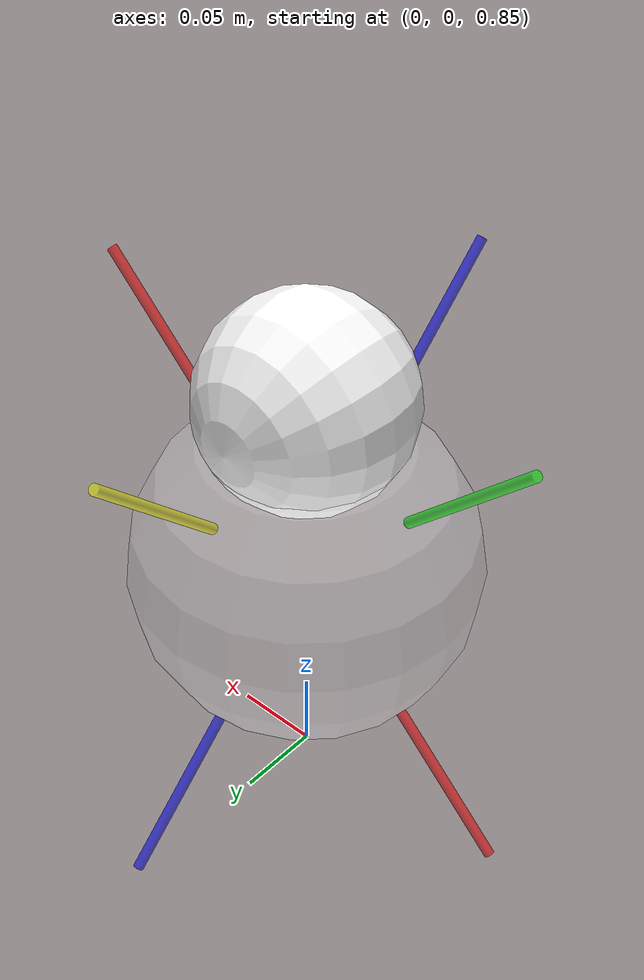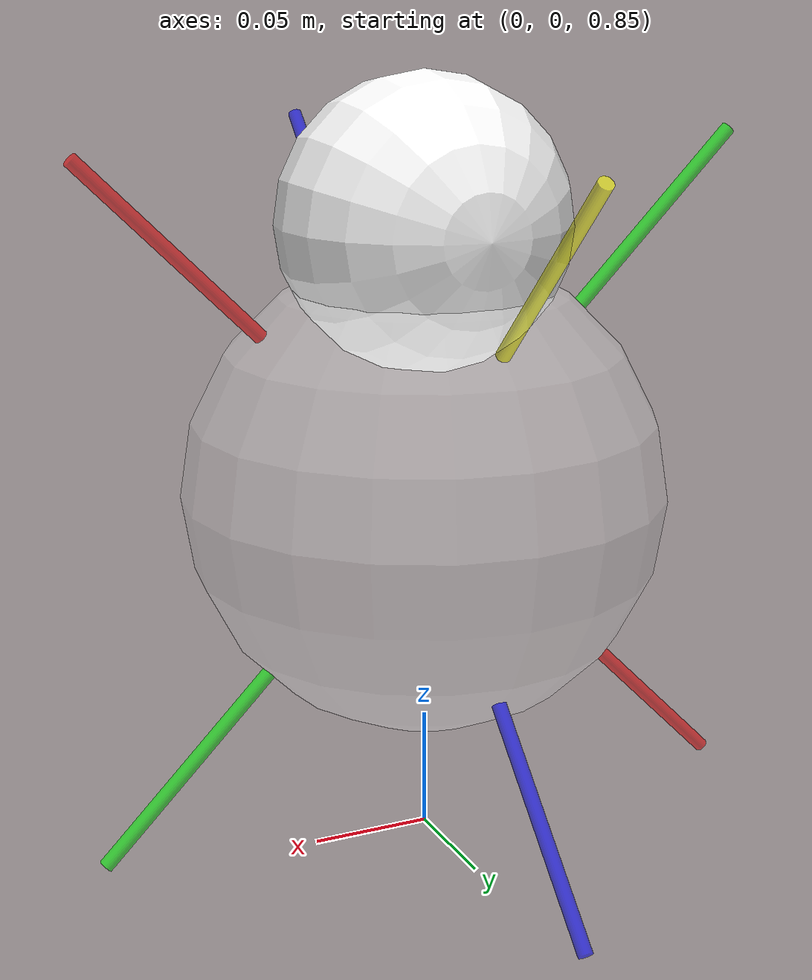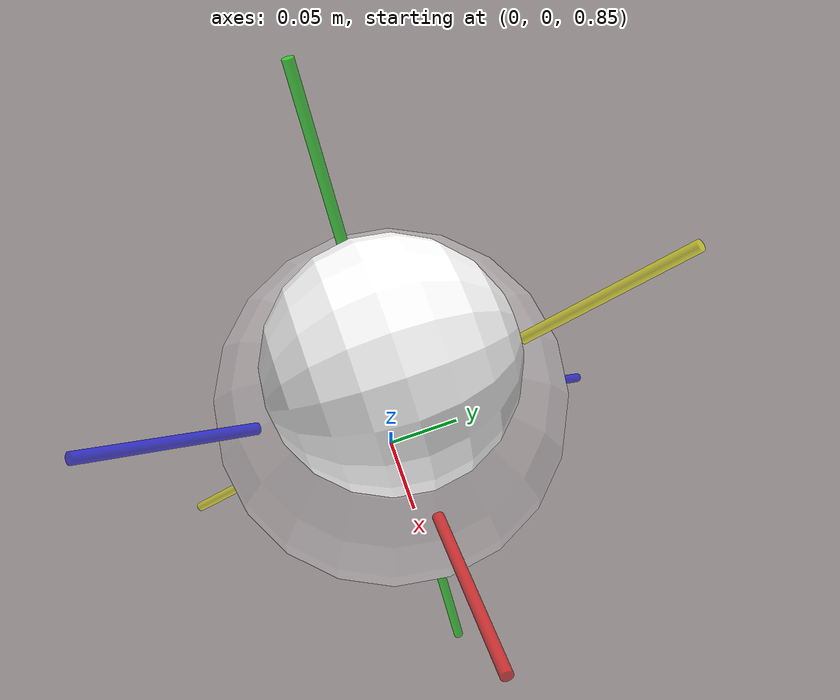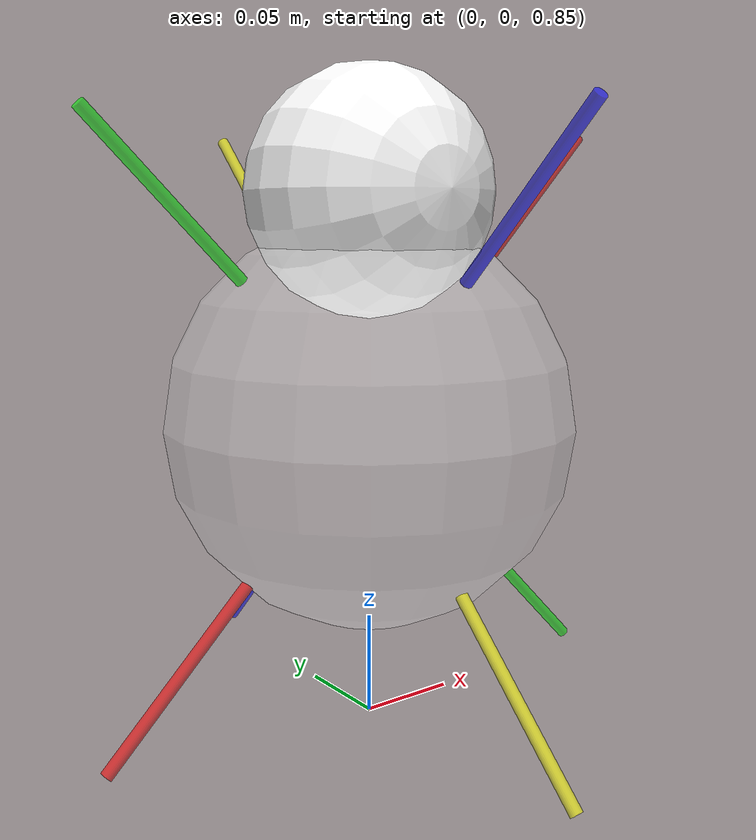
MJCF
<mujoco>
    <option gravity="0 0 0"/>
	<asset>
		<texture type="skybox" builtin="gradient" rgb1=".3 .5 .7" rgb2="0 0 0" width="32" height="512"/>
        <texture name="grid" type="2d" builtin="checker" width="512" height="512" rgb1=".1 .2 .3" rgb2=".2 .3 .4"/>
        <texture name = 'highlight' type = '2d' builtin='gradient' rgb1 = '255 255 255' rgb2 = '255 255 255' width = '512' height = '512'/>
        <material name = 'ball' texture = 'highlight' texrepeat ='1 1' texuniform = 'true'/>
        <material name="grid" texture="grid" texrepeat="1 1" texuniform="true" reflectance=".0"/>

		<texture name="bb8_tex" type="2d" file="bb8one.png"/>
		<material name="bb8_mat" texture="bb8_tex" texrepeat="1 1" texuniform="false" rgba="1 1 1 0.3"/>

		<texture name="bb8_head_tex" type="2d" file="bb8head.png"/>
		<material name="bb8_head_mat" texture="bb8_head_tex" texrepeat=".8 1.2" texuniform="false"/>
	</asset>
	<worldbody>
        <light name="spotlight" mode="targetbodycom" target="bb8" diffuse=".8 .8 .8" specular="0.3 0.3 0.3" pos="0 -6 4" cutoff="30"/>
        <light name="top" pos="0 0 2" mode="trackcom"/>

		<body name = 'bb8' pos="0 0 1">
			<joint name = 'bb8_free' type="free" />
			<geom name = "bb8" type = "sphere" size = ".1" material="bb8_mat" rgba="1 1 1 0.3"/>
		</body>

		<body pos= "0 0 1.11" mocap = 'true'>
			<geom name="head" pos="0 0 0" size=".06" type="sphere" rgba="1 1 1 1" contype="0" conaffinity="0" material="bb8_head_mat" euler="90 0 0"/>
		</body>

		<!-- Visual markers for the four motor axes -->
		<body pos="0 0 1" mocap="true">
			<!-- Motor 1 axis: x-z plane, +x direction, 45° from z -->
			<geom name="axis1" type="cylinder" size="0.003 0.2" pos="0 0 0" euler="0 45 0" rgba="1 0 0 0.6" contype="0" conaffinity="0"/>
			<!-- Motor 2 axis: x-z plane, -x direction, 45° from z -->
			<geom name="axis2" type="cylinder" size="0.003 0.2" pos="0 0 0" euler="0 -45 0" rgba="0 1 0 0.6" contype="0" conaffinity="0"/>
			<!-- Motor 3 axis: y-z plane, +y direction, 45° from z -->
			<geom name="axis3" type="cylinder" size="0.003 0.2" pos="0 0 0" euler="45 0 0" rgba="0 0 1 0.6" contype="0" conaffinity="0"/>
			<!-- Motor 4 axis: y-z plane, -y direction, 45° from z -->
			<geom name="axis4" type="cylinder" size="0.003 0.2" pos="0 0 0" euler="-45 0 0" rgba="1 1 0 0.6" contype="0" conaffinity="0"/>
		</body>

	</worldbody>
</mujoco>
